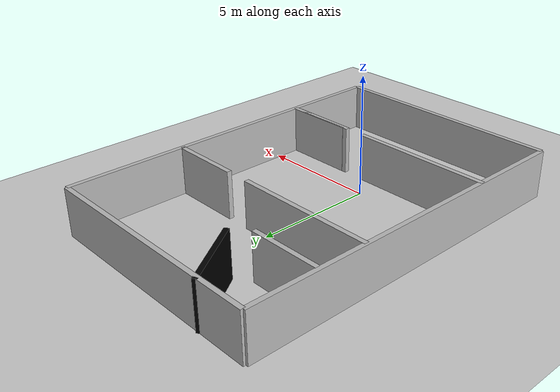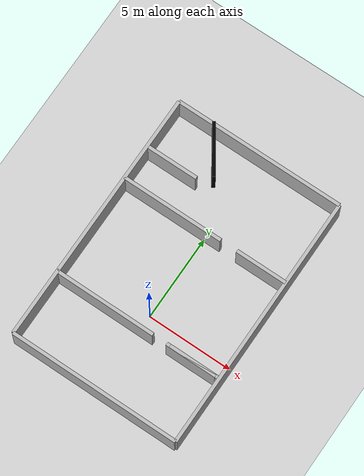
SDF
<sdf version="1.6">
 <world name="default">
  <physics name="default_physics" default="0" type="ode">
   <ode>
    <solver>
     <type>quick</type>
     <iters>20</iters>
     <sor>1</sor>
     <use_dynamic_moi_rescaling>0</use_dynamic_moi_rescaling>
    </solver>
    <constraints>
     <cfm>0</cfm>
     <erp>0.2</erp>
     <contact_max_correcting_vel>100</contact_max_correcting_vel>
     <contact_surface_layer>0</contact_surface_layer>
    </constraints>
   </ode>
   <real_time_update_rate>1000</real_time_update_rate>
   <max_step_size>0.001</max_step_size>
   <real_time_factor>1</real_time_factor>
  </physics>
  <light name="sun" type="directional">
   <pose>0 0 10 0 -0 0</pose>
   <diffuse>0.8 0.8 0.8 1</diffuse>
   <specular>0.2 0.2 0.2 1</specular>
   <attenuation>
    <range>1000</range>
    <constant>0.9</constant>
    <linear>0.01</linear>
    <quadratic>0.001</quadratic>
   </attenuation>
   <direction>-0.5 0.1 -0.9</direction>
  </light>
  <model name="ground_plane">
   <static>1</static>
   <link name="link">
    <collision name="collision">
     <geometry><plane><normal>0 0 1</normal><size>100 100</size></plane></geometry>
     <surface>
      <contact><collide_bitmask>65535</collide_bitmask></contact>
      <friction><ode><mu>100</mu><mu2>50</mu2></ode></friction>
     </surface>
    </collision>
    <visual name="visual">
     <cast_shadows>0</cast_shadows>
     <geometry><plane><normal>0 0 1</normal><size>100 100</size></plane></geometry>
     <material>
      <script><uri>file://media/materials/scripts/gazebo.material</uri><name>Gazebo/Grey</name></script>
     </material>
    </visual>
   </link>
  </model>
  <model name="wall_1_model">
   <pose>0 -5 1 0 -0 0</pose>
   <static>1</static>
   <link name="wall_1_body">
    <inertial>
     <mass>1</mass>
     <inertia><ixx>1</ixx><ixy>0</ixy><ixz>0</ixz><iyy>1</iyy><iyz>0</iyz><izz>1</izz></inertia>
    </inertial>
    <collision name="collision"><geometry><box><size>10 0.2 2</size></box></geometry></collision>
    <visual name="visual"><geometry><box><size>10 0.2 2</size></box></geometry></visual>
   </link>
  </model>
  <model name="wall_2_model">
   <pose>0 10 1 0 -0 0</pose>
   <static>1</static>
   <link name="wall_2_body">
    <inertial>
     <mass>1</mass>
     <inertia><ixx>1</ixx><ixy>0</ixy><ixz>0</ixz><iyy>1</iyy><iyz>0</iyz><izz>1</izz></inertia>
    </inertial>
    <collision name="collision"><geometry><box><size>10 0.2 2</size></box></geometry></collision>
    <visual name="visual"><geometry><box><size>10 0.2 2</size></box></geometry></visual>
   </link>
  </model>
  <model name="wall_3_model">
   <pose>-5 2.5 1 0 -0 0</pose>
   <static>1</static>
   <link name="wall_3_body">
    <inertial>
     <mass>1</mass>
     <inertia><ixx>1</ixx><ixy>0</ixy><ixz>0</ixz><iyy>1</iyy><iyz>0</iyz><izz>1</izz></inertia>
    </inertial>
    <collision name="collision"><geometry><box><size>0.2 15 2</size></box></geometry></collision>
    <visual name="visual"><geometry><box><size>0.2 15 2</size></box></geometry></visual>
   </link>
  </model>
  <model name="wall_4_model">
   <pose>5 2.5 1 0 -0 0</pose>
   <static>1</static>
   <link name="wall_4_body">
    <inertial>
     <mass>1</mass>
     <inertia><ixx>1</ixx><ixy>0</ixy><ixz>0</ixz><iyy>1</iyy><iyz>0</iyz><izz>1</izz></inertia>
    </inertial>
    <collision name="collision"><geometry><box><size>0.2 15 2</size></box></geometry></collision>
    <visual name="visual"><geometry><box><size>0.2 15 2</size></box></geometry></visual>
   </link>
  </model>
  <model name="wall_5_model">
   <pose>-2 5 1 0 -0 0</pose>
   <static>1</static>
   <link name="wall_5_body">
    <inertial>
     <mass>1</mass>
     <inertia><ixx>1</ixx><ixy>0</ixy><ixz>0</ixz><iyy>1</iyy><iyz>0</iyz><izz>1</izz></inertia>
    </inertial>
    <collision name="collision"><geometry><box><size>6 0.2 2</size></box></geometry></collision>
    <visual name="visual"><geometry><box><size>6 0.2 2</size></box></geometry></visual>
   </link>
  </model>
  <model name="wall_6_model">
   <pose>3.5 5 1 0 -0 0</pose>
   <static>1</static>
   <link name="wall_6_body">
    <inertial>
     <mass>1</mass>
     <inertia><ixx>1</ixx><ixy>0</ixy><ixz>0</ixz><iyy>1</iyy><iyz>0</iyz><izz>1</izz></inertia>
    </inertial>
    <collision name="collision"><geometry><box><size>3 0.2 2</size></box></geometry></collision>
    <visual name="visual"><geometry><box><size>3 0.2 2</size></box></geometry></visual>
   </link>
  </model>
  <light name="male03light" type="point">
   <pose>3.6 0.53 1.6 0 -0 0</pose>
   <diffuse>0.5 0.5 0.5 1</diffuse>
   <specular>0.1 0.1 0.1 1</specular>
   <attenuation>
    <range>1</range>
    <linear>0.01</linear>
    <constant>0.3</constant>
    <quadratic>0</quadratic>
   </attenuation>
   <direction>0 0 -1</direction>
   <spot><inner_angle>0.6</inner_angle><outer_angle>0.8</outer_angle><falloff>1.2</falloff></spot>
   <cast_shadows>0</cast_shadows>
  </light>
  <light name="female02light" type="point">
   <pose>-2.5 -2.63 1.5 0 -0 0</pose>
   <diffuse>0.5 0.5 0.5 1</diffuse>
   <specular>0.1 0.1 0.1 1</specular>
   <attenuation>
    <range>1</range>
    <linear>0.01</linear>
    <constant>0.3</constant>
    <quadratic>0</quadratic>
   </attenuation>
   <direction>0 0 -1</direction>
   <spot><inner_angle>0.6</inner_angle><outer_angle>0.8</outer_angle><falloff>1.2</falloff></spot>
   <cast_shadows>0</cast_shadows>
  </light>
  <light name="female03light" type="point">
   <pose>-3 6.2 1.5 0 -0 0</pose>
   <diffuse>0.5 0.5 0.5 1</diffuse>
   <specular>0.1 0.1 0.1 1</specular>
   <attenuation>
    <range>1</range>
    <linear>0.01</linear>
    <constant>0.3</constant>
    <quadratic>0</quadratic>
   </attenuation>
   <direction>0 0 -1</direction>
   <spot><inner_angle>0.6</inner_angle><outer_angle>0.8</outer_angle><falloff>1.2</falloff></spot>
   <cast_shadows>0</cast_shadows>
  </light>
  <light name="female02bislight" type="point">
   <pose>3.8 6.7 1.5 0 -0 0</pose>
   <diffuse>0.5 0.5 0.5 1</diffuse>
   <specular>0.1 0.1 0.1 1</specular>
   <attenuation>
    <range>1</range>
    <linear>0.01</linear>
    <constant>0.3</constant>
    <quadratic>0</quadratic>
   </attenuation>
   <direction>0 0 -1</direction>
   <spot><inner_angle>0.6</inner_angle><outer_angle>0.8</outer_angle><falloff>1.2</falloff></spot>
   <cast_shadows>0</cast_shadows>
  </light>
  <light name="male03bislight" type="point">
   <pose>-2.9 3.7 1.5 0 -0 0</pose>
   <diffuse>0.5 0.5 0.5 1</diffuse>
   <specular>0.1 0.1 0.1 1</specular>
   <attenuation>
    <range>1</range>
    <linear>0.01</linear>
    <constant>0.3</constant>
    <quadratic>0</quadratic>
   </attenuation>
   <direction>0 0 -1</direction>
   <spot><inner_angle>0.6</inner_angle><outer_angle>0.8</outer_angle><falloff>1.2</falloff></spot>
   <cast_shadows>0</cast_shadows>
  </light>
  <gravity>0 0 -9.81</gravity>
  <magnetic_field>6e-06 2.3e-05 -4.2e-05</magnetic_field>
  <atmosphere type="adiabatic"/>
  <scene><ambient>0.4 0.4 0.4 1</ambient><background>0.7 0.7 0.7 1</background><shadows>1</shadows></scene>
  <audio><device>default</device></audio>
  <spherical_coordinates>
   <surface_model>EARTH_WGS84</surface_model>
   <latitude_deg>0</latitude_deg>
   <longitude_deg>0</longitude_deg>
   <elevation>0</elevation>
   <heading_deg>0</heading_deg>
  </spherical_coordinates>
  <model name="wall_5_model_clone">
   <pose>-2.05757 -1.06821 1 0 -0 0</pose>
   <static>1</static>
   <link name="wall_5_body">
    <inertial>
     <mass>1</mass>
     <inertia><ixx>1</ixx><ixy>0</ixy><ixz>0</ixz><iyy>1</iyy><iyz>0</iyz><izz>1</izz></inertia>
    </inertial>
    <collision name="collision"><geometry><box><size>6 0.2 2</size></box></geometry></collision>
    <visual name="visual"><geometry><box><size>6 0.2 2</size></box></geometry></visual>
   </link>
  </model>
  <model name="wall_6_model_clone">
   <pose>3.48089 -1.06821 1 0 -0 0</pose>
   <static>1</static>
   <link name="wall_6_body">
    <inertial>
     <mass>1</mass>
     <inertia><ixx>1</ixx><ixy>0</ixy><ixz>0</ixz><iyy>1</iyy><iyz>0</iyz><izz>1</izz></inertia>
    </inertial>
    <collision name="collision"><geometry><box><size>3 0.2 2</size></box></geometry></collision>
    <visual name="visual"><geometry><box><size>3 0.2 2</size></box></geometry></visual>
   </link>
  </model>
  <model name="wall_6_model_clone_clone">
   <pose>3.27658 -1.07127 1 0 -0 0</pose>
   <static>1</static>
   <link name="wall_6_body">
    <inertial>
     <mass>1</mass>
     <inertia><ixx>1</ixx><ixy>0</ixy><ixz>0</ixz><iyy>1</iyy><iyz>0</iyz><izz>1</izz></inertia>
    </inertial>
    <collision name="collision"><geometry><box><size>3 0.2 2</size></box></geometry></collision>
    <visual name="visual"><geometry><box><size>3 0.2 2</size></box></geometry></visual>
   </link>
  </model>
  <model name="wall_6_model_clone_0">
   <pose>-3.41941 7.06268 1 0 -0 0</pose>
   <static>1</static>
   <link name="wall_6_body">
    <inertial>
     <mass>1</mass>
     <inertia><ixx>1</ixx><ixy>0</ixy><ixz>0</ixz><iyy>1</iyy><iyz>0</iyz><izz>1</izz></inertia>
    </inertial>
    <collision name="collision"><geometry><box><size>3 0.2 2</size></box></geometry></collision>
    <visual name="visual"><geometry><box><size>3 0.2 2</size></box></geometry></visual>
   </link>
  </model>
  <model name="wall_6_model_clone_0_clone">
   <link name="wall_6_body">
    <inertial>
     <mass>1</mass>
     <inertia><ixx>1</ixx><ixy>0</ixy><ixz>0</ixz><iyy>1</iyy><iyz>0</iyz><izz>1</izz></inertia>
    </inertial>
    <pose>0 0.5 0 0 0 -0.98</pose>
    <visual name="visual">
     <geometry><box><size>3 0.2 2</size></box></geometry>
     <material>
      <shader type="vertex"><normal_map>__default__</normal_map></shader>
      <script><name>ModelPreview_1::wall_6_body::visual_MATERIAL_</name><uri>__default__</uri></script>
      <ambient>0 0 0 1</ambient>
      <diffuse>0 0 0 1</diffuse>
      <specular>0 0 0 1</specular>
      <emissive>0 0 0 1</emissive>
     </material>
    </visual>
    <collision name="collision">
     <geometry><box><size>3 0.2 2</size></box></geometry>
     <surface>
      <friction>
       <ode><mu>1</mu><mu2>1</mu2><fdir1>0 0 0</fdir1><slip1>0</slip1><slip2>0</slip2></ode>
       <torsional>
        <coefficient>1</coefficient>
        <patch_radius>0</patch_radius>
        <surface_radius>0</surface_radius>
        <use_patch_radius>1</use_patch_radius>
        <ode><slip>0</slip></ode>
       </torsional>
      </friction>
      <bounce><restitution_coefficient>0</restitution_coefficient><threshold>1e+06</threshold></bounce>
      <contact>
       <collide_without_contact>0</collide_without_contact>
       <collide_without_contact_bitmask>1</collide_without_contact_bitmask>
       <collide_bitmask>1</collide_bitmask>
       <ode>
        <soft_cfm>0</soft_cfm>
        <soft_erp>0.2</soft_erp>
        <kp>1e+13</kp>
        <kd>1</kd>
        <max_vel>0.01</max_vel>
        <min_depth>0</min_depth>
       </ode>
       <bullet>
        <split_impulse>1</split_impulse>
        <split_impulse_penetration_threshold>-0.01</split_impulse_penetration_threshold>
        <soft_cfm>0</soft_cfm>
        <soft_erp>0.2</soft_erp>
        <kp>1e+13</kp>
        <kd>1</kd>
       </bullet>
      </contact>
     </surface>
    </collision>
   </link>
   <static>1</static>
   <pose>-2.05053 8.36616 1 0 -0 0</pose>
  </model>
 </world>
</sdf>
